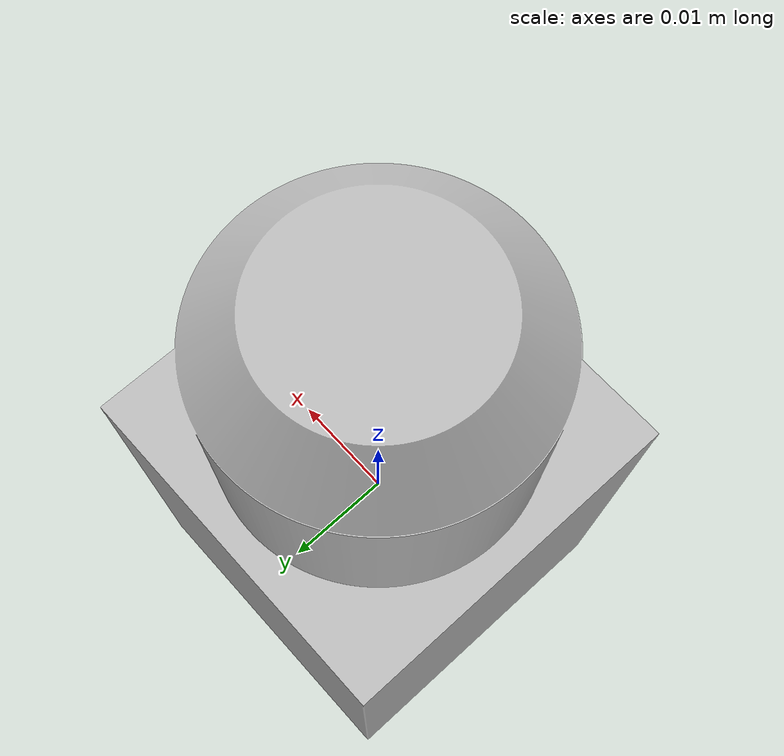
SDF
<?xml version='1.0'?>
<sdf version='1.4'> <!-- changed from 1.5 to be compatible with Gazebo2 -->
  <model name="megabloks1x1">
    <static>false</static>
    <link name="blok">
      <pose>0 0 0 0 0 0</pose>
      <collision name="collision">
        <geometry>
          <box>
	  <size>0.031300000000000001 0.0313 0.0426</size>
          </box>
        </geometry>
	<surface>
	  <friction>
	    <ode>
	      <mu>0.4</mu>
	    </ode>
	  </friction>
	</surface>
      </collision>
      <inertial>
        <mass>0.0030000000000000001</mass>
	    <inertia>
          <ixx>0.00001</ixx>
          <iyy>0.00001</iyy>
          <izz>0.00001</izz>
        </inertia>
      </inertial>
      <visual name="visual">
        <pose>0 0 -0.02 0 0 0</pose>
        <geometry>
          <mesh>
            <uri>model://megabloks1x1/meshes/model.dae</uri>
          </mesh>
        </geometry>
      </visual>
    </link>
  </model>
</sdf>
